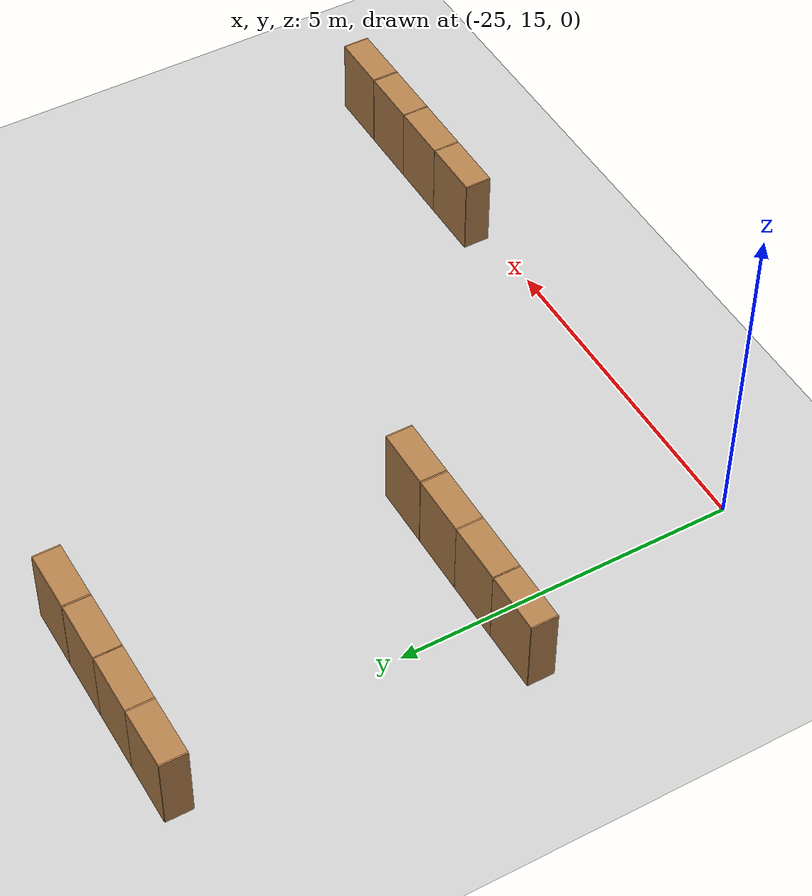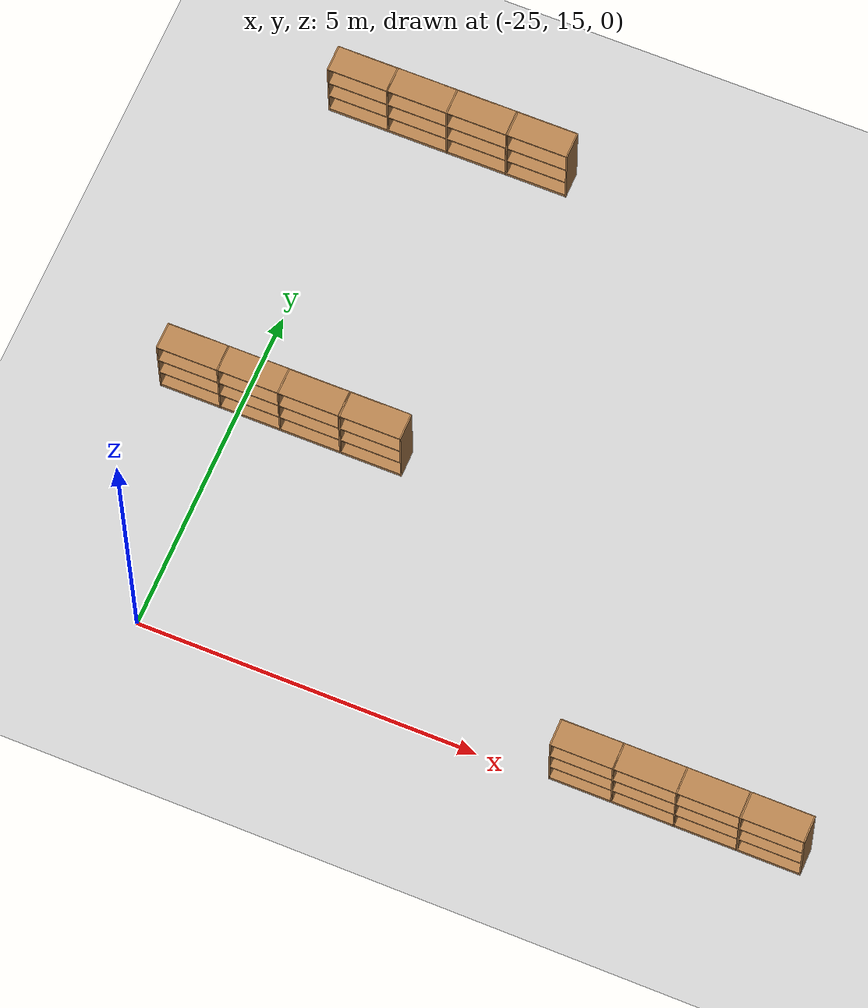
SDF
<sdf version="1.6">
 <world name="default">
  <model name="ground_plane">
   <static>1</static>
   <link name="link">
    <collision name="collision">
     <geometry><plane><normal>0 0 1</normal><size>100 100</size></plane></geometry>
     <surface><friction><ode><mu>100</mu><mu2>50</mu2></ode></friction></surface>
    </collision>
    <visual name="visual">
     <cast_shadows>0</cast_shadows>
     <geometry><plane><normal>0 0 1</normal><size>100 100</size></plane></geometry>
     <material>
      <script><uri>file://media/materials/scripts/gazebo.material</uri><name>Gazebo/Grey</name></script>
     </material>
    </visual>
   </link>
  </model>
  <model name="Bookself-4_clone_8">
   <model name="Bookself-3">
    <model name="bookshelf_0">
     <static>1</static>
     <link name="link">
      <inertial><mass>1</mass></inertial>
      <collision name="back">
       <pose>0 0.005 0.6 0 -0 0</pose>
       <geometry><box><size>0.9 0.01 1.2</size></box></geometry>
      </collision>
      <visual name="visual1">
       <pose>0 0.005 0.6 0 -0 0</pose>
       <geometry><box><size>0.9 0.01 1.2</size></box></geometry>
       <material>
        <script><uri>file://media/materials/scripts/gazebo.material</uri><name>Gazebo/Wood</name></script>
       </material>
      </visual>
      <collision name="left_side">
       <pose>0.45 -0.195 0.6 0 -0 0</pose>
       <geometry><box><size>0.02 0.4 1.2</size></box></geometry>
      </collision>
      <visual name="visual2">
       <pose>0.45 -0.195 0.6 0 -0 0</pose>
       <geometry><box><size>0.02 0.4 1.2</size></box></geometry>
       <material>
        <script><uri>file://media/materials/scripts/gazebo.material</uri><name>Gazebo/Wood</name></script>
       </material>
      </visual>
      <collision name="right_side">
       <pose>-0.45 -0.195 0.6 0 -0 0</pose>
       <geometry><box><size>0.02 0.4 1.2</size></box></geometry>
      </collision>
      <visual name="visual3">
       <pose>-0.45 -0.195 0.6 0 -0 0</pose>
       <geometry><box><size>0.02 0.4 1.2</size></box></geometry>
       <material>
        <script><uri>file://media/materials/scripts/gazebo.material</uri><name>Gazebo/Wood</name></script>
       </material>
      </visual>
      <collision name="bottom">
       <pose>0 -0.195 0.03 0 -0 0</pose>
       <geometry><box><size>0.88 0.4 0.06</size></box></geometry>
      </collision>
      <visual name="visual4">
       <pose>0 -0.195 0.03 0 -0 0</pose>
       <geometry><box><size>0.88 0.4 0.06</size></box></geometry>
       <material>
        <script><uri>file://media/materials/scripts/gazebo.material</uri><name>Gazebo/Wood</name></script>
       </material>
      </visual>
      <collision name="top">
       <pose>0 -0.195 1.19 0 -0 0</pose>
       <geometry><box><size>0.88 0.4 0.02</size></box></geometry>
      </collision>
      <visual name="visual5">
       <pose>0 -0.195 1.19 0 -0 0</pose>
       <geometry><box><size>0.88 0.4 0.02</size></box></geometry>
       <material>
        <script><uri>file://media/materials/scripts/gazebo.material</uri><name>Gazebo/Wood</name></script>
       </material>
      </visual>
      <collision name="low_shelf">
       <pose>0 -0.195 0.43 0 -0 0</pose>
       <geometry><box><size>0.88 0.4 0.02</size></box></geometry>
      </collision>
      <visual name="visual6">
       <pose>0 -0.195 0.43 0 -0 0</pose>
       <geometry><box><size>0.88 0.4 0.02</size></box></geometry>
       <material>
        <script><uri>file://media/materials/scripts/gazebo.material</uri><name>Gazebo/Wood</name></script>
       </material>
      </visual>
      <collision name="high_shelf">
       <pose>0 -0.195 0.8 0 -0 0</pose>
       <geometry><box><size>0.88 0.4 0.02</size></box></geometry>
      </collision>
      <visual name="visual7">
       <pose>0 -0.195 0.8 0 -0 0</pose>
       <geometry><box><size>0.88 0.4 0.02</size></box></geometry>
       <material>
        <script><uri>file://media/materials/scripts/gazebo.material</uri><name>Gazebo/Wood</name></script>
       </material>
      </visual>
     </link>
     <pose>-0.903039 0 0 0 -0 0</pose>
    </model>
    <model name="bookshelf_1">
     <static>1</static>
     <link name="link">
      <inertial><mass>1</mass></inertial>
      <collision name="back">
       <pose>0 0.005 0.6 0 -0 0</pose>
       <geometry><box><size>0.9 0.01 1.2</size></box></geometry>
      </collision>
      <visual name="visual1">
       <pose>0 0.005 0.6 0 -0 0</pose>
       <geometry><box><size>0.9 0.01 1.2</size></box></geometry>
       <material>
        <script><uri>file://media/materials/scripts/gazebo.material</uri><name>Gazebo/Wood</name></script>
       </material>
      </visual>
      <collision name="left_side">
       <pose>0.45 -0.195 0.6 0 -0 0</pose>
       <geometry><box><size>0.02 0.4 1.2</size></box></geometry>
      </collision>
      <visual name="visual2">
       <pose>0.45 -0.195 0.6 0 -0 0</pose>
       <geometry><box><size>0.02 0.4 1.2</size></box></geometry>
       <material>
        <script><uri>file://media/materials/scripts/gazebo.material</uri><name>Gazebo/Wood</name></script>
       </material>
      </visual>
      <collision name="right_side">
       <pose>-0.45 -0.195 0.6 0 -0 0</pose>
       <geometry><box><size>0.02 0.4 1.2</size></box></geometry>
      </collision>
      <visual name="visual3">
       <pose>-0.45 -0.195 0.6 0 -0 0</pose>
       <geometry><box><size>0.02 0.4 1.2</size></box></geometry>
       <material>
        <script><uri>file://media/materials/scripts/gazebo.material</uri><name>Gazebo/Wood</name></script>
       </material>
      </visual>
      <collision name="bottom">
       <pose>0 -0.195 0.03 0 -0 0</pose>
       <geometry><box><size>0.88 0.4 0.06</size></box></geometry>
      </collision>
      <visual name="visual4">
       <pose>0 -0.195 0.03 0 -0 0</pose>
       <geometry><box><size>0.88 0.4 0.06</size></box></geometry>
       <material>
        <script><uri>file://media/materials/scripts/gazebo.material</uri><name>Gazebo/Wood</name></script>
       </material>
      </visual>
      <collision name="top">
       <pose>0 -0.195 1.19 0 -0 0</pose>
       <geometry><box><size>0.88 0.4 0.02</size></box></geometry>
      </collision>
      <visual name="visual5">
       <pose>0 -0.195 1.19 0 -0 0</pose>
       <geometry><box><size>0.88 0.4 0.02</size></box></geometry>
       <material>
        <script><uri>file://media/materials/scripts/gazebo.material</uri><name>Gazebo/Wood</name></script>
       </material>
      </visual>
      <collision name="low_shelf">
       <pose>0 -0.195 0.43 0 -0 0</pose>
       <geometry><box><size>0.88 0.4 0.02</size></box></geometry>
      </collision>
      <visual name="visual6">
       <pose>0 -0.195 0.43 0 -0 0</pose>
       <geometry><box><size>0.88 0.4 0.02</size></box></geometry>
       <material>
        <script><uri>file://media/materials/scripts/gazebo.material</uri><name>Gazebo/Wood</name></script>
       </material>
      </visual>
      <collision name="high_shelf">
       <pose>0 -0.195 0.8 0 -0 0</pose>
       <geometry><box><size>0.88 0.4 0.02</size></box></geometry>
      </collision>
      <visual name="visual7">
       <pose>0 -0.195 0.8 0 -0 0</pose>
       <geometry><box><size>0.88 0.4 0.02</size></box></geometry>
       <material>
        <script><uri>file://media/materials/scripts/gazebo.material</uri><name>Gazebo/Wood</name></script>
       </material>
      </visual>
     </link>
     <pose>0.000535 0 0 0 -0 0</pose>
    </model>
    <model name="bookshelf_1_clone">
     <static>1</static>
     <link name="link">
      <inertial><mass>1</mass></inertial>
      <collision name="back">
       <pose>0 0.005 0.6 0 -0 0</pose>
       <geometry><box><size>0.9 0.01 1.2</size></box></geometry>
      </collision>
      <visual name="visual1">
       <pose>0 0.005 0.6 0 -0 0</pose>
       <geometry><box><size>0.9 0.01 1.2</size></box></geometry>
       <material>
        <script><uri>file://media/materials/scripts/gazebo.material</uri><name>Gazebo/Wood</name></script>
       </material>
      </visual>
      <collision name="left_side">
       <pose>0.45 -0.195 0.6 0 -0 0</pose>
       <geometry><box><size>0.02 0.4 1.2</size></box></geometry>
      </collision>
      <visual name="visual2">
       <pose>0.45 -0.195 0.6 0 -0 0</pose>
       <geometry><box><size>0.02 0.4 1.2</size></box></geometry>
       <material>
        <script><uri>file://media/materials/scripts/gazebo.material</uri><name>Gazebo/Wood</name></script>
       </material>
      </visual>
      <collision name="right_side">
       <pose>-0.45 -0.195 0.6 0 -0 0</pose>
       <geometry><box><size>0.02 0.4 1.2</size></box></geometry>
      </collision>
      <visual name="visual3">
       <pose>-0.45 -0.195 0.6 0 -0 0</pose>
       <geometry><box><size>0.02 0.4 1.2</size></box></geometry>
       <material>
        <script><uri>file://media/materials/scripts/gazebo.material</uri><name>Gazebo/Wood</name></script>
       </material>
      </visual>
      <collision name="bottom">
       <pose>0 -0.195 0.03 0 -0 0</pose>
       <geometry><box><size>0.88 0.4 0.06</size></box></geometry>
      </collision>
      <visual name="visual4">
       <pose>0 -0.195 0.03 0 -0 0</pose>
       <geometry><box><size>0.88 0.4 0.06</size></box></geometry>
       <material>
        <script><uri>file://media/materials/scripts/gazebo.material</uri><name>Gazebo/Wood</name></script>
       </material>
      </visual>
      <collision name="top">
       <pose>0 -0.195 1.19 0 -0 0</pose>
       <geometry><box><size>0.88 0.4 0.02</size></box></geometry>
      </collision>
      <visual name="visual5">
       <pose>0 -0.195 1.19 0 -0 0</pose>
       <geometry><box><size>0.88 0.4 0.02</size></box></geometry>
       <material>
        <script><uri>file://media/materials/scripts/gazebo.material</uri><name>Gazebo/Wood</name></script>
       </material>
      </visual>
      <collision name="low_shelf">
       <pose>0 -0.195 0.43 0 -0 0</pose>
       <geometry><box><size>0.88 0.4 0.02</size></box></geometry>
      </collision>
      <visual name="visual6">
       <pose>0 -0.195 0.43 0 -0 0</pose>
       <geometry><box><size>0.88 0.4 0.02</size></box></geometry>
       <material>
        <script><uri>file://media/materials/scripts/gazebo.material</uri><name>Gazebo/Wood</name></script>
       </material>
      </visual>
      <collision name="high_shelf">
       <pose>0 -0.195 0.8 0 -0 0</pose>
       <geometry><box><size>0.88 0.4 0.02</size></box></geometry>
      </collision>
      <visual name="visual7">
       <pose>0 -0.195 0.8 0 -0 0</pose>
       <geometry><box><size>0.88 0.4 0.02</size></box></geometry>
       <material>
        <script><uri>file://media/materials/scripts/gazebo.material</uri><name>Gazebo/Wood</name></script>
       </material>
      </visual>
     </link>
     <pose>0.902502 0 0 0 -0 0</pose>
    </model>
    <static>1</static>
    <pose>-0.906894 3e-05 0 0 -0 0</pose>
   </model>
   <model name="bookshelf">
    <static>1</static>
    <link name="link">
     <inertial><mass>1</mass></inertial>
     <collision name="back">
      <pose>0 0.005 0.6 0 -0 0</pose>
      <geometry><box><size>0.9 0.01 1.2</size></box></geometry>
     </collision>
     <visual name="visual1">
      <pose>0 0.005 0.6 0 -0 0</pose>
      <geometry><box><size>0.9 0.01 1.2</size></box></geometry>
      <material>
       <script><uri>file://media/materials/scripts/gazebo.material</uri><name>Gazebo/Wood</name></script>
      </material>
     </visual>
     <collision name="left_side">
      <pose>0.45 -0.195 0.6 0 -0 0</pose>
      <geometry><box><size>0.02 0.4 1.2</size></box></geometry>
     </collision>
     <visual name="visual2">
      <pose>0.45 -0.195 0.6 0 -0 0</pose>
      <geometry><box><size>0.02 0.4 1.2</size></box></geometry>
      <material>
       <script><uri>file://media/materials/scripts/gazebo.material</uri><name>Gazebo/Wood</name></script>
      </material>
     </visual>
     <collision name="right_side">
      <pose>-0.45 -0.195 0.6 0 -0 0</pose>
      <geometry><box><size>0.02 0.4 1.2</size></box></geometry>
     </collision>
     <visual name="visual3">
      <pose>-0.45 -0.195 0.6 0 -0 0</pose>
      <geometry><box><size>0.02 0.4 1.2</size></box></geometry>
      <material>
       <script><uri>file://media/materials/scripts/gazebo.material</uri><name>Gazebo/Wood</name></script>
      </material>
     </visual>
     <collision name="bottom">
      <pose>0 -0.195 0.03 0 -0 0</pose>
      <geometry><box><size>0.88 0.4 0.06</size></box></geometry>
     </collision>
     <visual name="visual4">
      <pose>0 -0.195 0.03 0 -0 0</pose>
      <geometry><box><size>0.88 0.4 0.06</size></box></geometry>
      <material>
       <script><uri>file://media/materials/scripts/gazebo.material</uri><name>Gazebo/Wood</name></script>
      </material>
     </visual>
     <collision name="top">
      <pose>0 -0.195 1.19 0 -0 0</pose>
      <geometry><box><size>0.88 0.4 0.02</size></box></geometry>
     </collision>
     <visual name="visual5">
      <pose>0 -0.195 1.19 0 -0 0</pose>
      <geometry><box><size>0.88 0.4 0.02</size></box></geometry>
      <material>
       <script><uri>file://media/materials/scripts/gazebo.material</uri><name>Gazebo/Wood</name></script>
      </material>
     </visual>
     <collision name="low_shelf">
      <pose>0 -0.195 0.43 0 -0 0</pose>
      <geometry><box><size>0.88 0.4 0.02</size></box></geometry>
     </collision>
     <visual name="visual6">
      <pose>0 -0.195 0.43 0 -0 0</pose>
      <geometry><box><size>0.88 0.4 0.02</size></box></geometry>
      <material>
       <script><uri>file://media/materials/scripts/gazebo.material</uri><name>Gazebo/Wood</name></script>
      </material>
     </visual>
     <collision name="high_shelf">
      <pose>0 -0.195 0.8 0 -0 0</pose>
      <geometry><box><size>0.88 0.4 0.02</size></box></geometry>
     </collision>
     <visual name="visual7">
      <pose>0 -0.195 0.8 0 -0 0</pose>
      <geometry><box><size>0.88 0.4 0.02</size></box></geometry>
      <material>
       <script><uri>file://media/materials/scripts/gazebo.material</uri><name>Gazebo/Wood</name></script>
      </material>
     </visual>
    </link>
    <pose>0.906808 3e-05 0 0 -0 0</pose>
   </model>
   <static>0</static>
   <pose>-16.699 15.4411 0 0 -0 0</pose>
  </model>
  <model name="Bookself-4_clone_0_clone_2">
   <model name="Bookself-3">
    <model name="bookshelf_0">
     <static>1</static>
     <link name="link">
      <inertial><mass>1</mass></inertial>
      <collision name="back">
       <pose>0 0.005 0.6 0 -0 0</pose>
       <geometry><box><size>0.9 0.01 1.2</size></box></geometry>
      </collision>
      <visual name="visual1">
       <pose>0 0.005 0.6 0 -0 0</pose>
       <geometry><box><size>0.9 0.01 1.2</size></box></geometry>
       <material>
        <script><uri>file://media/materials/scripts/gazebo.material</uri><name>Gazebo/Wood</name></script>
       </material>
      </visual>
      <collision name="left_side">
       <pose>0.45 -0.195 0.6 0 -0 0</pose>
       <geometry><box><size>0.02 0.4 1.2</size></box></geometry>
      </collision>
      <visual name="visual2">
       <pose>0.45 -0.195 0.6 0 -0 0</pose>
       <geometry><box><size>0.02 0.4 1.2</size></box></geometry>
       <material>
        <script><uri>file://media/materials/scripts/gazebo.material</uri><name>Gazebo/Wood</name></script>
       </material>
      </visual>
      <collision name="right_side">
       <pose>-0.45 -0.195 0.6 0 -0 0</pose>
       <geometry><box><size>0.02 0.4 1.2</size></box></geometry>
      </collision>
      <visual name="visual3">
       <pose>-0.45 -0.195 0.6 0 -0 0</pose>
       <geometry><box><size>0.02 0.4 1.2</size></box></geometry>
       <material>
        <script><uri>file://media/materials/scripts/gazebo.material</uri><name>Gazebo/Wood</name></script>
       </material>
      </visual>
      <collision name="bottom">
       <pose>0 -0.195 0.03 0 -0 0</pose>
       <geometry><box><size>0.88 0.4 0.06</size></box></geometry>
      </collision>
      <visual name="visual4">
       <pose>0 -0.195 0.03 0 -0 0</pose>
       <geometry><box><size>0.88 0.4 0.06</size></box></geometry>
       <material>
        <script><uri>file://media/materials/scripts/gazebo.material</uri><name>Gazebo/Wood</name></script>
       </material>
      </visual>
      <collision name="top">
       <pose>0 -0.195 1.19 0 -0 0</pose>
       <geometry><box><size>0.88 0.4 0.02</size></box></geometry>
      </collision>
      <visual name="visual5">
       <pose>0 -0.195 1.19 0 -0 0</pose>
       <geometry><box><size>0.88 0.4 0.02</size></box></geometry>
       <material>
        <script><uri>file://media/materials/scripts/gazebo.material</uri><name>Gazebo/Wood</name></script>
       </material>
      </visual>
      <collision name="low_shelf">
       <pose>0 -0.195 0.43 0 -0 0</pose>
       <geometry><box><size>0.88 0.4 0.02</size></box></geometry>
      </collision>
      <visual name="visual6">
       <pose>0 -0.195 0.43 0 -0 0</pose>
       <geometry><box><size>0.88 0.4 0.02</size></box></geometry>
       <material>
        <script><uri>file://media/materials/scripts/gazebo.material</uri><name>Gazebo/Wood</name></script>
       </material>
      </visual>
      <collision name="high_shelf">
       <pose>0 -0.195 0.8 0 -0 0</pose>
       <geometry><box><size>0.88 0.4 0.02</size></box></geometry>
      </collision>
      <visual name="visual7">
       <pose>0 -0.195 0.8 0 -0 0</pose>
       <geometry><box><size>0.88 0.4 0.02</size></box></geometry>
       <material>
        <script><uri>file://media/materials/scripts/gazebo.material</uri><name>Gazebo/Wood</name></script>
       </material>
      </visual>
     </link>
     <pose>-0.903039 0 0 0 -0 0</pose>
    </model>
    <model name="bookshelf_1">
     <static>1</static>
     <link name="link">
      <inertial><mass>1</mass></inertial>
      <collision name="back">
       <pose>0 0.005 0.6 0 -0 0</pose>
       <geometry><box><size>0.9 0.01 1.2</size></box></geometry>
      </collision>
      <visual name="visual1">
       <pose>0 0.005 0.6 0 -0 0</pose>
       <geometry><box><size>0.9 0.01 1.2</size></box></geometry>
       <material>
        <script><uri>file://media/materials/scripts/gazebo.material</uri><name>Gazebo/Wood</name></script>
       </material>
      </visual>
      <collision name="left_side">
       <pose>0.45 -0.195 0.6 0 -0 0</pose>
       <geometry><box><size>0.02 0.4 1.2</size></box></geometry>
      </collision>
      <visual name="visual2">
       <pose>0.45 -0.195 0.6 0 -0 0</pose>
       <geometry><box><size>0.02 0.4 1.2</size></box></geometry>
       <material>
        <script><uri>file://media/materials/scripts/gazebo.material</uri><name>Gazebo/Wood</name></script>
       </material>
      </visual>
      <collision name="right_side">
       <pose>-0.45 -0.195 0.6 0 -0 0</pose>
       <geometry><box><size>0.02 0.4 1.2</size></box></geometry>
      </collision>
      <visual name="visual3">
       <pose>-0.45 -0.195 0.6 0 -0 0</pose>
       <geometry><box><size>0.02 0.4 1.2</size></box></geometry>
       <material>
        <script><uri>file://media/materials/scripts/gazebo.material</uri><name>Gazebo/Wood</name></script>
       </material>
      </visual>
      <collision name="bottom">
       <pose>0 -0.195 0.03 0 -0 0</pose>
       <geometry><box><size>0.88 0.4 0.06</size></box></geometry>
      </collision>
      <visual name="visual4">
       <pose>0 -0.195 0.03 0 -0 0</pose>
       <geometry><box><size>0.88 0.4 0.06</size></box></geometry>
       <material>
        <script><uri>file://media/materials/scripts/gazebo.material</uri><name>Gazebo/Wood</name></script>
       </material>
      </visual>
      <collision name="top">
       <pose>0 -0.195 1.19 0 -0 0</pose>
       <geometry><box><size>0.88 0.4 0.02</size></box></geometry>
      </collision>
      <visual name="visual5">
       <pose>0 -0.195 1.19 0 -0 0</pose>
       <geometry><box><size>0.88 0.4 0.02</size></box></geometry>
       <material>
        <script><uri>file://media/materials/scripts/gazebo.material</uri><name>Gazebo/Wood</name></script>
       </material>
      </visual>
      <collision name="low_shelf">
       <pose>0 -0.195 0.43 0 -0 0</pose>
       <geometry><box><size>0.88 0.4 0.02</size></box></geometry>
      </collision>
      <visual name="visual6">
       <pose>0 -0.195 0.43 0 -0 0</pose>
       <geometry><box><size>0.88 0.4 0.02</size></box></geometry>
       <material>
        <script><uri>file://media/materials/scripts/gazebo.material</uri><name>Gazebo/Wood</name></script>
       </material>
      </visual>
      <collision name="high_shelf">
       <pose>0 -0.195 0.8 0 -0 0</pose>
       <geometry><box><size>0.88 0.4 0.02</size></box></geometry>
      </collision>
      <visual name="visual7">
       <pose>0 -0.195 0.8 0 -0 0</pose>
       <geometry><box><size>0.88 0.4 0.02</size></box></geometry>
       <material>
        <script><uri>file://media/materials/scripts/gazebo.material</uri><name>Gazebo/Wood</name></script>
       </material>
      </visual>
     </link>
     <pose>0.000535 0 0 0 -0 0</pose>
    </model>
    <model name="bookshelf_1_clone">
     <static>1</static>
     <link name="link">
      <inertial><mass>1</mass></inertial>
      <collision name="back">
       <pose>0 0.005 0.6 0 -0 0</pose>
       <geometry><box><size>0.9 0.01 1.2</size></box></geometry>
      </collision>
      <visual name="visual1">
       <pose>0 0.005 0.6 0 -0 0</pose>
       <geometry><box><size>0.9 0.01 1.2</size></box></geometry>
       <material>
        <script><uri>file://media/materials/scripts/gazebo.material</uri><name>Gazebo/Wood</name></script>
       </material>
      </visual>
      <collision name="left_side">
       <pose>0.45 -0.195 0.6 0 -0 0</pose>
       <geometry><box><size>0.02 0.4 1.2</size></box></geometry>
      </collision>
      <visual name="visual2">
       <pose>0.45 -0.195 0.6 0 -0 0</pose>
       <geometry><box><size>0.02 0.4 1.2</size></box></geometry>
       <material>
        <script><uri>file://media/materials/scripts/gazebo.material</uri><name>Gazebo/Wood</name></script>
       </material>
      </visual>
      <collision name="right_side">
       <pose>-0.45 -0.195 0.6 0 -0 0</pose>
       <geometry><box><size>0.02 0.4 1.2</size></box></geometry>
      </collision>
      <visual name="visual3">
       <pose>-0.45 -0.195 0.6 0 -0 0</pose>
       <geometry><box><size>0.02 0.4 1.2</size></box></geometry>
       <material>
        <script><uri>file://media/materials/scripts/gazebo.material</uri><name>Gazebo/Wood</name></script>
       </material>
      </visual>
      <collision name="bottom">
       <pose>0 -0.195 0.03 0 -0 0</pose>
       <geometry><box><size>0.88 0.4 0.06</size></box></geometry>
      </collision>
      <visual name="visual4">
       <pose>0 -0.195 0.03 0 -0 0</pose>
       <geometry><box><size>0.88 0.4 0.06</size></box></geometry>
       <material>
        <script><uri>file://media/materials/scripts/gazebo.material</uri><name>Gazebo/Wood</name></script>
       </material>
      </visual>
      <collision name="top">
       <pose>0 -0.195 1.19 0 -0 0</pose>
       <geometry><box><size>0.88 0.4 0.02</size></box></geometry>
      </collision>
      <visual name="visual5">
       <pose>0 -0.195 1.19 0 -0 0</pose>
       <geometry><box><size>0.88 0.4 0.02</size></box></geometry>
       <material>
        <script><uri>file://media/materials/scripts/gazebo.material</uri><name>Gazebo/Wood</name></script>
       </material>
      </visual>
      <collision name="low_shelf">
       <pose>0 -0.195 0.43 0 -0 0</pose>
       <geometry><box><size>0.88 0.4 0.02</size></box></geometry>
      </collision>
      <visual name="visual6">
       <pose>0 -0.195 0.43 0 -0 0</pose>
       <geometry><box><size>0.88 0.4 0.02</size></box></geometry>
       <material>
        <script><uri>file://media/materials/scripts/gazebo.material</uri><name>Gazebo/Wood</name></script>
       </material>
      </visual>
      <collision name="high_shelf">
       <pose>0 -0.195 0.8 0 -0 0</pose>
       <geometry><box><size>0.88 0.4 0.02</size></box></geometry>
      </collision>
      <visual name="visual7">
       <pose>0 -0.195 0.8 0 -0 0</pose>
       <geometry><box><size>0.88 0.4 0.02</size></box></geometry>
       <material>
        <script><uri>file://media/materials/scripts/gazebo.material</uri><name>Gazebo/Wood</name></script>
       </material>
      </visual>
     </link>
     <pose>0.902502 0 0 0 -0 0</pose>
    </model>
    <static>1</static>
    <pose>-0.906894 3e-05 0 0 -0 0</pose>
   </model>
   <model name="bookshelf">
    <static>1</static>
    <link name="link">
     <inertial><mass>1</mass></inertial>
     <collision name="back">
      <pose>0 0.005 0.6 0 -0 0</pose>
      <geometry><box><size>0.9 0.01 1.2</size></box></geometry>
     </collision>
     <visual name="visual1">
      <pose>0 0.005 0.6 0 -0 0</pose>
      <geometry><box><size>0.9 0.01 1.2</size></box></geometry>
      <material>
       <script><uri>file://media/materials/scripts/gazebo.material</uri><name>Gazebo/Wood</name></script>
      </material>
     </visual>
     <collision name="left_side">
      <pose>0.45 -0.195 0.6 0 -0 0</pose>
      <geometry><box><size>0.02 0.4 1.2</size></box></geometry>
     </collision>
     <visual name="visual2">
      <pose>0.45 -0.195 0.6 0 -0 0</pose>
      <geometry><box><size>0.02 0.4 1.2</size></box></geometry>
      <material>
       <script><uri>file://media/materials/scripts/gazebo.material</uri><name>Gazebo/Wood</name></script>
      </material>
     </visual>
     <collision name="right_side">
      <pose>-0.45 -0.195 0.6 0 -0 0</pose>
      <geometry><box><size>0.02 0.4 1.2</size></box></geometry>
     </collision>
     <visual name="visual3">
      <pose>-0.45 -0.195 0.6 0 -0 0</pose>
      <geometry><box><size>0.02 0.4 1.2</size></box></geometry>
      <material>
       <script><uri>file://media/materials/scripts/gazebo.material</uri><name>Gazebo/Wood</name></script>
      </material>
     </visual>
     <collision name="bottom">
      <pose>0 -0.195 0.03 0 -0 0</pose>
      <geometry><box><size>0.88 0.4 0.06</size></box></geometry>
     </collision>
     <visual name="visual4">
      <pose>0 -0.195 0.03 0 -0 0</pose>
      <geometry><box><size>0.88 0.4 0.06</size></box></geometry>
      <material>
       <script><uri>file://media/materials/scripts/gazebo.material</uri><name>Gazebo/Wood</name></script>
      </material>
     </visual>
     <collision name="top">
      <pose>0 -0.195 1.19 0 -0 0</pose>
      <geometry><box><size>0.88 0.4 0.02</size></box></geometry>
     </collision>
     <visual name="visual5">
      <pose>0 -0.195 1.19 0 -0 0</pose>
      <geometry><box><size>0.88 0.4 0.02</size></box></geometry>
      <material>
       <script><uri>file://media/materials/scripts/gazebo.material</uri><name>Gazebo/Wood</name></script>
      </material>
     </visual>
     <collision name="low_shelf">
      <pose>0 -0.195 0.43 0 -0 0</pose>
      <geometry><box><size>0.88 0.4 0.02</size></box></geometry>
     </collision>
     <visual name="visual6">
      <pose>0 -0.195 0.43 0 -0 0</pose>
      <geometry><box><size>0.88 0.4 0.02</size></box></geometry>
      <material>
       <script><uri>file://media/materials/scripts/gazebo.material</uri><name>Gazebo/Wood</name></script>
      </material>
     </visual>
     <collision name="high_shelf">
      <pose>0 -0.195 0.8 0 -0 0</pose>
      <geometry><box><size>0.88 0.4 0.02</size></box></geometry>
     </collision>
     <visual name="visual7">
      <pose>0 -0.195 0.8 0 -0 0</pose>
      <geometry><box><size>0.88 0.4 0.02</size></box></geometry>
      <material>
       <script><uri>file://media/materials/scripts/gazebo.material</uri><name>Gazebo/Wood</name></script>
      </material>
     </visual>
    </link>
    <pose>0.906808 3e-05 0 0 -0 0</pose>
   </model>
   <static>0</static>
   <pose>-23.4439 23.697 0 0 -0 0</pose>
  </model>
  <model name="Bookself-4_clone_0_clone_3">
   <model name="Bookself-3">
    <model name="bookshelf_0">
     <static>1</static>
     <link name="link">
      <inertial><mass>1</mass></inertial>
      <collision name="back">
       <pose>0 0.005 0.6 0 -0 0</pose>
       <geometry><box><size>0.9 0.01 1.2</size></box></geometry>
      </collision>
      <visual name="visual1">
       <pose>0 0.005 0.6 0 -0 0</pose>
       <geometry><box><size>0.9 0.01 1.2</size></box></geometry>
       <material>
        <script><uri>file://media/materials/scripts/gazebo.material</uri><name>Gazebo/Wood</name></script>
       </material>
      </visual>
      <collision name="left_side">
       <pose>0.45 -0.195 0.6 0 -0 0</pose>
       <geometry><box><size>0.02 0.4 1.2</size></box></geometry>
      </collision>
      <visual name="visual2">
       <pose>0.45 -0.195 0.6 0 -0 0</pose>
       <geometry><box><size>0.02 0.4 1.2</size></box></geometry>
       <material>
        <script><uri>file://media/materials/scripts/gazebo.material</uri><name>Gazebo/Wood</name></script>
       </material>
      </visual>
      <collision name="right_side">
       <pose>-0.45 -0.195 0.6 0 -0 0</pose>
       <geometry><box><size>0.02 0.4 1.2</size></box></geometry>
      </collision>
      <visual name="visual3">
       <pose>-0.45 -0.195 0.6 0 -0 0</pose>
       <geometry><box><size>0.02 0.4 1.2</size></box></geometry>
       <material>
        <script><uri>file://media/materials/scripts/gazebo.material</uri><name>Gazebo/Wood</name></script>
       </material>
      </visual>
      <collision name="bottom">
       <pose>0 -0.195 0.03 0 -0 0</pose>
       <geometry><box><size>0.88 0.4 0.06</size></box></geometry>
      </collision>
      <visual name="visual4">
       <pose>0 -0.195 0.03 0 -0 0</pose>
       <geometry><box><size>0.88 0.4 0.06</size></box></geometry>
       <material>
        <script><uri>file://media/materials/scripts/gazebo.material</uri><name>Gazebo/Wood</name></script>
       </material>
      </visual>
      <collision name="top">
       <pose>0 -0.195 1.19 0 -0 0</pose>
       <geometry><box><size>0.88 0.4 0.02</size></box></geometry>
      </collision>
      <visual name="visual5">
       <pose>0 -0.195 1.19 0 -0 0</pose>
       <geometry><box><size>0.88 0.4 0.02</size></box></geometry>
       <material>
        <script><uri>file://media/materials/scripts/gazebo.material</uri><name>Gazebo/Wood</name></script>
       </material>
      </visual>
      <collision name="low_shelf">
       <pose>0 -0.195 0.43 0 -0 0</pose>
       <geometry><box><size>0.88 0.4 0.02</size></box></geometry>
      </collision>
      <visual name="visual6">
       <pose>0 -0.195 0.43 0 -0 0</pose>
       <geometry><box><size>0.88 0.4 0.02</size></box></geometry>
       <material>
        <script><uri>file://media/materials/scripts/gazebo.material</uri><name>Gazebo/Wood</name></script>
       </material>
      </visual>
      <collision name="high_shelf">
       <pose>0 -0.195 0.8 0 -0 0</pose>
       <geometry><box><size>0.88 0.4 0.02</size></box></geometry>
      </collision>
      <visual name="visual7">
       <pose>0 -0.195 0.8 0 -0 0</pose>
       <geometry><box><size>0.88 0.4 0.02</size></box></geometry>
       <material>
        <script><uri>file://media/materials/scripts/gazebo.material</uri><name>Gazebo/Wood</name></script>
       </material>
      </visual>
     </link>
     <pose>-0.903039 0 0 0 -0 0</pose>
    </model>
    <model name="bookshelf_1">
     <static>1</static>
     <link name="link">
      <inertial><mass>1</mass></inertial>
      <collision name="back">
       <pose>0 0.005 0.6 0 -0 0</pose>
       <geometry><box><size>0.9 0.01 1.2</size></box></geometry>
      </collision>
      <visual name="visual1">
       <pose>0 0.005 0.6 0 -0 0</pose>
       <geometry><box><size>0.9 0.01 1.2</size></box></geometry>
       <material>
        <script><uri>file://media/materials/scripts/gazebo.material</uri><name>Gazebo/Wood</name></script>
       </material>
      </visual>
      <collision name="left_side">
       <pose>0.45 -0.195 0.6 0 -0 0</pose>
       <geometry><box><size>0.02 0.4 1.2</size></box></geometry>
      </collision>
      <visual name="visual2">
       <pose>0.45 -0.195 0.6 0 -0 0</pose>
       <geometry><box><size>0.02 0.4 1.2</size></box></geometry>
       <material>
        <script><uri>file://media/materials/scripts/gazebo.material</uri><name>Gazebo/Wood</name></script>
       </material>
      </visual>
      <collision name="right_side">
       <pose>-0.45 -0.195 0.6 0 -0 0</pose>
       <geometry><box><size>0.02 0.4 1.2</size></box></geometry>
      </collision>
      <visual name="visual3">
       <pose>-0.45 -0.195 0.6 0 -0 0</pose>
       <geometry><box><size>0.02 0.4 1.2</size></box></geometry>
       <material>
        <script><uri>file://media/materials/scripts/gazebo.material</uri><name>Gazebo/Wood</name></script>
       </material>
      </visual>
      <collision name="bottom">
       <pose>0 -0.195 0.03 0 -0 0</pose>
       <geometry><box><size>0.88 0.4 0.06</size></box></geometry>
      </collision>
      <visual name="visual4">
       <pose>0 -0.195 0.03 0 -0 0</pose>
       <geometry><box><size>0.88 0.4 0.06</size></box></geometry>
       <material>
        <script><uri>file://media/materials/scripts/gazebo.material</uri><name>Gazebo/Wood</name></script>
       </material>
      </visual>
      <collision name="top">
       <pose>0 -0.195 1.19 0 -0 0</pose>
       <geometry><box><size>0.88 0.4 0.02</size></box></geometry>
      </collision>
      <visual name="visual5">
       <pose>0 -0.195 1.19 0 -0 0</pose>
       <geometry><box><size>0.88 0.4 0.02</size></box></geometry>
       <material>
        <script><uri>file://media/materials/scripts/gazebo.material</uri><name>Gazebo/Wood</name></script>
       </material>
      </visual>
      <collision name="low_shelf">
       <pose>0 -0.195 0.43 0 -0 0</pose>
       <geometry><box><size>0.88 0.4 0.02</size></box></geometry>
      </collision>
      <visual name="visual6">
       <pose>0 -0.195 0.43 0 -0 0</pose>
       <geometry><box><size>0.88 0.4 0.02</size></box></geometry>
       <material>
        <script><uri>file://media/materials/scripts/gazebo.material</uri><name>Gazebo/Wood</name></script>
       </material>
      </visual>
      <collision name="high_shelf">
       <pose>0 -0.195 0.8 0 -0 0</pose>
       <geometry><box><size>0.88 0.4 0.02</size></box></geometry>
      </collision>
      <visual name="visual7">
       <pose>0 -0.195 0.8 0 -0 0</pose>
       <geometry><box><size>0.88 0.4 0.02</size></box></geometry>
       <material>
        <script><uri>file://media/materials/scripts/gazebo.material</uri><name>Gazebo/Wood</name></script>
       </material>
      </visual>
     </link>
     <pose>0.000535 0 0 0 -0 0</pose>
    </model>
    <model name="bookshelf_1_clone">
     <static>1</static>
     <link name="link">
      <inertial><mass>1</mass></inertial>
      <collision name="back">
       <pose>0 0.005 0.6 0 -0 0</pose>
       <geometry><box><size>0.9 0.01 1.2</size></box></geometry>
      </collision>
      <visual name="visual1">
       <pose>0 0.005 0.6 0 -0 0</pose>
       <geometry><box><size>0.9 0.01 1.2</size></box></geometry>
       <material>
        <script><uri>file://media/materials/scripts/gazebo.material</uri><name>Gazebo/Wood</name></script>
       </material>
      </visual>
      <collision name="left_side">
       <pose>0.45 -0.195 0.6 0 -0 0</pose>
       <geometry><box><size>0.02 0.4 1.2</size></box></geometry>
      </collision>
      <visual name="visual2">
       <pose>0.45 -0.195 0.6 0 -0 0</pose>
       <geometry><box><size>0.02 0.4 1.2</size></box></geometry>
       <material>
        <script><uri>file://media/materials/scripts/gazebo.material</uri><name>Gazebo/Wood</name></script>
       </material>
      </visual>
      <collision name="right_side">
       <pose>-0.45 -0.195 0.6 0 -0 0</pose>
       <geometry><box><size>0.02 0.4 1.2</size></box></geometry>
      </collision>
      <visual name="visual3">
       <pose>-0.45 -0.195 0.6 0 -0 0</pose>
       <geometry><box><size>0.02 0.4 1.2</size></box></geometry>
       <material>
        <script><uri>file://media/materials/scripts/gazebo.material</uri><name>Gazebo/Wood</name></script>
       </material>
      </visual>
      <collision name="bottom">
       <pose>0 -0.195 0.03 0 -0 0</pose>
       <geometry><box><size>0.88 0.4 0.06</size></box></geometry>
      </collision>
      <visual name="visual4">
       <pose>0 -0.195 0.03 0 -0 0</pose>
       <geometry><box><size>0.88 0.4 0.06</size></box></geometry>
       <material>
        <script><uri>file://media/materials/scripts/gazebo.material</uri><name>Gazebo/Wood</name></script>
       </material>
      </visual>
      <collision name="top">
       <pose>0 -0.195 1.19 0 -0 0</pose>
       <geometry><box><size>0.88 0.4 0.02</size></box></geometry>
      </collision>
      <visual name="visual5">
       <pose>0 -0.195 1.19 0 -0 0</pose>
       <geometry><box><size>0.88 0.4 0.02</size></box></geometry>
       <material>
        <script><uri>file://media/materials/scripts/gazebo.material</uri><name>Gazebo/Wood</name></script>
       </material>
      </visual>
      <collision name="low_shelf">
       <pose>0 -0.195 0.43 0 -0 0</pose>
       <geometry><box><size>0.88 0.4 0.02</size></box></geometry>
      </collision>
      <visual name="visual6">
       <pose>0 -0.195 0.43 0 -0 0</pose>
       <geometry><box><size>0.88 0.4 0.02</size></box></geometry>
       <material>
        <script><uri>file://media/materials/scripts/gazebo.material</uri><name>Gazebo/Wood</name></script>
       </material>
      </visual>
      <collision name="high_shelf">
       <pose>0 -0.195 0.8 0 -0 0</pose>
       <geometry><box><size>0.88 0.4 0.02</size></box></geometry>
      </collision>
      <visual name="visual7">
       <pose>0 -0.195 0.8 0 -0 0</pose>
       <geometry><box><size>0.88 0.4 0.02</size></box></geometry>
       <material>
        <script><uri>file://media/materials/scripts/gazebo.material</uri><name>Gazebo/Wood</name></script>
       </material>
      </visual>
     </link>
     <pose>0.902502 0 0 0 -0 0</pose>
    </model>
    <static>1</static>
    <pose>-0.906894 3e-05 0 0 -0 0</pose>
   </model>
   <model name="bookshelf">
    <static>1</static>
    <link name="link">
     <inertial><mass>1</mass></inertial>
     <collision name="back">
      <pose>0 0.005 0.6 0 -0 0</pose>
      <geometry><box><size>0.9 0.01 1.2</size></box></geometry>
     </collision>
     <visual name="visual1">
      <pose>0 0.005 0.6 0 -0 0</pose>
      <geometry><box><size>0.9 0.01 1.2</size></box></geometry>
      <material>
       <script><uri>file://media/materials/scripts/gazebo.material</uri><name>Gazebo/Wood</name></script>
      </material>
     </visual>
     <collision name="left_side">
      <pose>0.45 -0.195 0.6 0 -0 0</pose>
      <geometry><box><size>0.02 0.4 1.2</size></box></geometry>
     </collision>
     <visual name="visual2">
      <pose>0.45 -0.195 0.6 0 -0 0</pose>
      <geometry><box><size>0.02 0.4 1.2</size></box></geometry>
      <material>
       <script><uri>file://media/materials/scripts/gazebo.material</uri><name>Gazebo/Wood</name></script>
      </material>
     </visual>
     <collision name="right_side">
      <pose>-0.45 -0.195 0.6 0 -0 0</pose>
      <geometry><box><size>0.02 0.4 1.2</size></box></geometry>
     </collision>
     <visual name="visual3">
      <pose>-0.45 -0.195 0.6 0 -0 0</pose>
      <geometry><box><size>0.02 0.4 1.2</size></box></geometry>
      <material>
       <script><uri>file://media/materials/scripts/gazebo.material</uri><name>Gazebo/Wood</name></script>
      </material>
     </visual>
     <collision name="bottom">
      <pose>0 -0.195 0.03 0 -0 0</pose>
      <geometry><box><size>0.88 0.4 0.06</size></box></geometry>
     </collision>
     <visual name="visual4">
      <pose>0 -0.195 0.03 0 -0 0</pose>
      <geometry><box><size>0.88 0.4 0.06</size></box></geometry>
      <material>
       <script><uri>file://media/materials/scripts/gazebo.material</uri><name>Gazebo/Wood</name></script>
      </material>
     </visual>
     <collision name="top">
      <pose>0 -0.195 1.19 0 -0 0</pose>
      <geometry><box><size>0.88 0.4 0.02</size></box></geometry>
     </collision>
     <visual name="visual5">
      <pose>0 -0.195 1.19 0 -0 0</pose>
      <geometry><box><size>0.88 0.4 0.02</size></box></geometry>
      <material>
       <script><uri>file://media/materials/scripts/gazebo.material</uri><name>Gazebo/Wood</name></script>
      </material>
     </visual>
     <collision name="low_shelf">
      <pose>0 -0.195 0.43 0 -0 0</pose>
      <geometry><box><size>0.88 0.4 0.02</size></box></geometry>
     </collision>
     <visual name="visual6">
      <pose>0 -0.195 0.43 0 -0 0</pose>
      <geometry><box><size>0.88 0.4 0.02</size></box></geometry>
      <material>
       <script><uri>file://media/materials/scripts/gazebo.material</uri><name>Gazebo/Wood</name></script>
      </material>
     </visual>
     <collision name="high_shelf">
      <pose>0 -0.195 0.8 0 -0 0</pose>
      <geometry><box><size>0.88 0.4 0.02</size></box></geometry>
     </collision>
     <visual name="visual7">
      <pose>0 -0.195 0.8 0 -0 0</pose>
      <geometry><box><size>0.88 0.4 0.02</size></box></geometry>
      <material>
       <script><uri>file://media/materials/scripts/gazebo.material</uri><name>Gazebo/Wood</name></script>
      </material>
     </visual>
    </link>
    <pose>0.906808 3e-05 0 0 -0 0</pose>
   </model>
   <static>0</static>
   <pose>-23.8972 18.8105 0 0 -0 0</pose>
  </model>
 </world>
</sdf>
